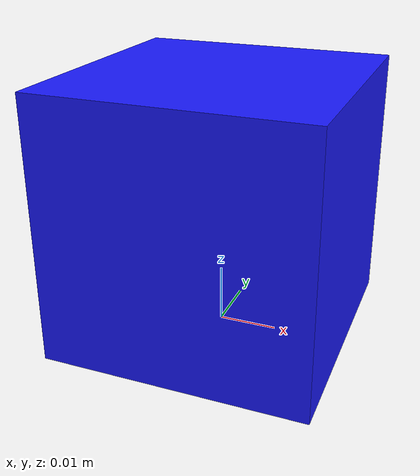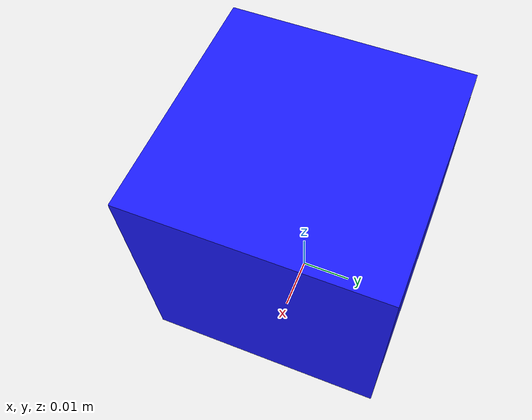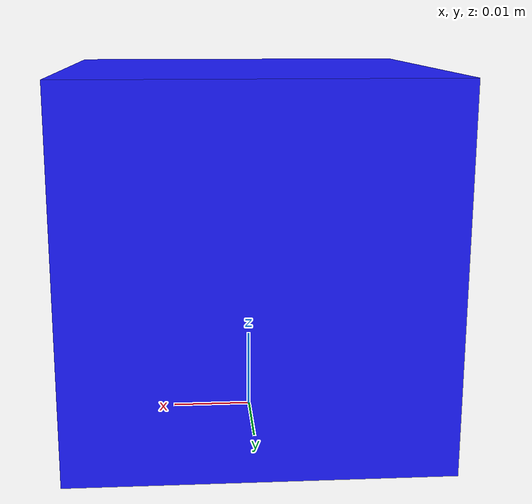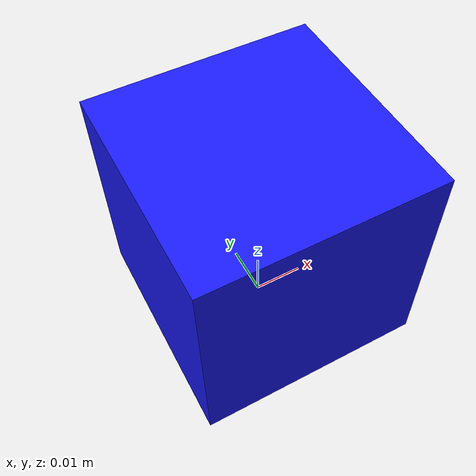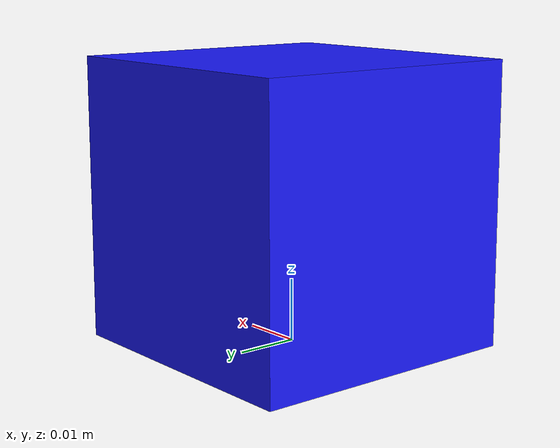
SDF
<?xml version='1.0'?>
<sdf version='1.7'>
  <model name='template_block'>
    <link name='base_link'>
      <inertial>
        <mass>0.05</mass>
        <inertia>
          <ixx>1.6875e-06</ixx>
          <ixy>0</ixy>
          <ixz>0</ixz>
          <iyy>1.6875e-06</iyy>
          <iyz>0</iyz>
          <izz>1.6875e-06</izz>
        </inertia>
        <pose>0 0 0.01 0 0 0</pose>
      </inertial>
      <pose>0 0 0 0 0 0</pose>
      <visual name='visual'>
        <pose>0 0 0.0225 0 0 0</pose>
        <geometry>
            <box>
                <size>0.045 0.045 0.045</size>
            </box>
        </geometry>
        <material>
          <diffuse>0.1 0.1 1 1</diffuse>
        </material>
      </visual>
      <collision name='collision'>
        <pose>0 0 0.0225 0 0 0</pose>
        <geometry>
            <box>
              <size>0.044 0.044 0.044</size>
            </box>
        </geometry>
      </collision>
      <!-- balls help with collisions -->
      <collision name='ball1'>
        <pose>-0.0225 -0.0225 0.005 0 0 0</pose>
        <geometry>
          <sphere>
            <radius>1e-7</radius>
          </sphere>
        </geometry>
      </collision>
      <collision name='ball2'>
        <pose>0.0225 -0.0225 0.005 0 0 0</pose>
        <geometry>
          <sphere>
            <radius>1e-7</radius>
          </sphere>
        </geometry>
      </collision>
      <collision name='ball3'>
        <pose>-0.0225 0.0225 0.005 0 0 0</pose>
        <geometry>
          <sphere>
            <radius>1e-7</radius>
          </sphere>
        </geometry>
      </collision>
      <collision name='ball4'>
        <pose>0.0225 0.0225 0.005 0 0 0</pose>
        <geometry>
          <sphere>
            <radius>1e-7</radius>
          </sphere>
        </geometry>
      </collision>
      <collision name='ball5'>
        <pose>-0.0225 -0.0225 0.045 0 0 0</pose>
        <geometry>
          <sphere>
            <radius>1e-7</radius>
          </sphere>
        </geometry>
      </collision>
      <collision name='ball6'>
        <pose>0.0225 -0.0225 0.045 0 0 0</pose>
        <geometry>
          <sphere>
            <radius>1e-7</radius>
          </sphere>
        </geometry>
      </collision>
      <collision name='ball7'>
        <pose>-0.0225 0.0225 0.045 0 0 0</pose>
        <geometry>
          <sphere>
            <radius>1e-7</radius>
          </sphere>
        </geometry>
      </collision>
      <collision name='ball8'>
        <pose>0.0225 0.0225 0.045 0 0 0</pose>
        <geometry>
          <sphere>
            <radius>1e-7</radius>
          </sphere>
        </geometry>
      </collision>
    </link>
  </model>
</sdf>
